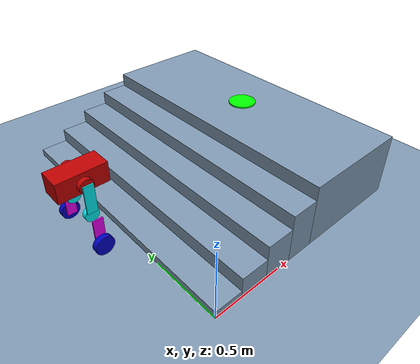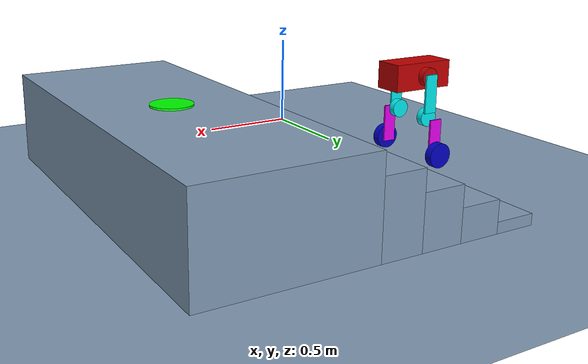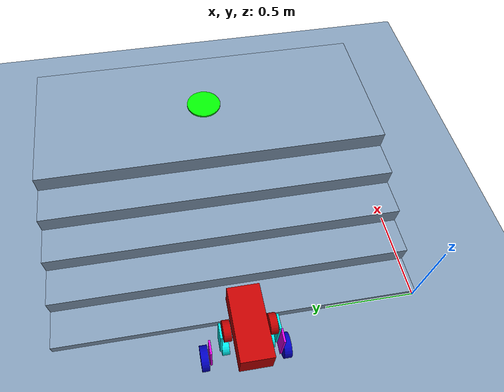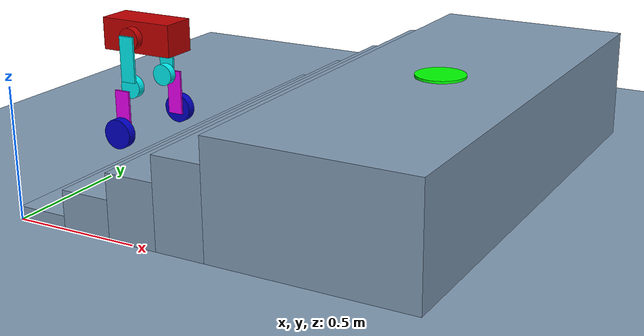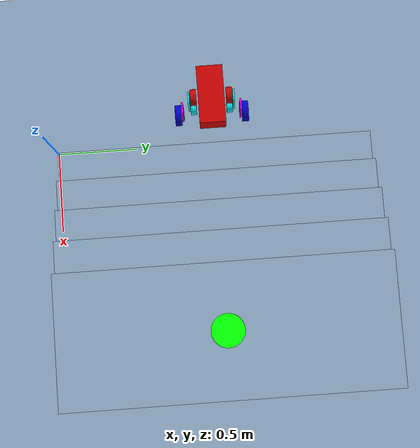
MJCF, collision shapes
<mujoco model="arx7">
  <compiler angle="radian" meshdir="./meshes/"/>
  <option timestep="0.002" integrator="RK4" gravity="0 0 -9.806" solver="Newton" noslip_iterations="0"/>
  <size njmax="10000" nconmax="10000"/>
  <default>
    <geom contype="1" conaffinity="1" friction="0.6 0.3 0.3" rgba="0.5 0.6 0.7 1" margin="0.001" group="0"/>
    <motor gear="50" ctrllimited="true" ctrlrange="-10 10" />
    <joint limited="true" frictionloss="0.5" damping="45" armature="0.1"/>
  </default>

  <asset>
    <mesh name="base_link" file="chassis/base_link.STL"/>
    <mesh name="left_thigh" file="chassis/left_thigh.STL"/>
    <mesh name="left_shin" file="chassis/left_shin.STL"/>
    <mesh name="left_wheel" file="chassis/left_wheel.STL"/>
    <mesh name="right_thigh" file="chassis/right_thigh.STL"/>
    <mesh name="right_shin" file="chassis/right_shin.STL"/>
    <mesh name="right_wheel" file="chassis/right_wheel.STL"/>

    <mesh name="stair1" file="stair/stair1.STL"/>
    <mesh name="stair2" file="stair/stair2.STL"/>
    <mesh name="stair3" file="stair/stair3.STL"/>
    <mesh name="stair4" file="stair/stair4.STL"/>
    <mesh name="stair5" file="stair/stair5.STL"/>
  </asset>

  <asset>
    <texture name="grid" type="2d" builtin="checker" rgb1=".9 .8 .7" rgb2=".4 .4 .4" width="300" height="300" mark="edge" markrgb=".2 .3 .4"/>
    <material name="grid" texture="grid" texrepeat="2 2" texuniform="true" reflectance=".2"/>
  </asset>

  <visual>
    <global offwidth="1920" offheight="1080"/>
    <rgba com="0.502 1.0 0 0.5" contactforce="0.98 0.4 0.4 0.7" contactpoint="1.0 1.0 0.6 0.4"/>
    <scale com="0.2" forcewidth="0.035" contactwidth="0.10" contactheight="0.04"/>
  </visual>

  <worldbody>
    <light directional="true" diffuse=".8 .8 .8" pos="0 0 10" dir="0 0 -10"/>
    <light pos="0.5 -.4 1." dir="1 2 -1.5" diffuse=".6 .6 .6"/>
    <camera name="top" pos="0. 0. 2." xyaxes="1.000 0.0 0.000 0.0 1.000 0.017"/>
    <camera name="left" pos="0. 1 0.3" xyaxes="-1. 0. 0. 0. 0. 1."/>
    <camera name="right" pos="0. -1 0.3" xyaxes="1. 0. 0. 0. 0. 1."/>
    <camera name="track" mode="trackcom" fovy="45" pos="0.5 -1. 0.35" xyaxes="0.866 0.5 0 0 0 1"/>
    <geom name="ground" type="plane" pos="0 0 0" size="20 20 0.1" material="grid" solimp=".9 .95 .001" solref='-10000 -1000'/>
    <geom name="stair1" type="mesh" mesh="stair1" pos="0.0 0 -0.05"/>
    <geom name="stair2" type="mesh" mesh="stair2" pos="0.2 0 -0.05"/>
    <geom name="stair3" type="mesh" mesh="stair3" pos="0.4 0 -0.05"/>
    <geom name="stair4" type="mesh" mesh="stair4" pos="0.6 0 -0.05"/>
    <geom name="stair5" type="mesh" mesh="stair5" pos="0.8 0 -0.05"/>
    <geom name="end" type="cylinder" size="0.1 0.01 0" pos="1.2 1 0.45" rgba="0 1 0 1" contype="0" conaffinity="0"/>
    <!-- ======= ROBOT ======= -->
    <body name="base_link" pos="-0.2 1 0.395" euler="0 0 0">
      <inertial pos="0.018885 0.00062964 0.06018" quat="-0.064773 0.618315 0.0968439 0.777246" mass="4.6733" diaginertia="0.054592 0.0348635 0.0323885"/>
      <joint name="floating_base" type="free" limited="false" frictionloss="1" damping="10" armature="0."/>
      <geom name="base1" type="mesh" contype="0" conaffinity="0" group="1" density="0" rgba="0.75294 0 0 1" mesh="base_link"/>
      <geom name="base2" size="0.17 0.077 0.07" pos="0.02 0 0.06" type="box" rgba="0.75294 0 0 0.000987654321"/>
      <geom name="base3" size="0.048 0.0175" pos="0.017241 0.106 0.0613" quat="0.499998 -0.500002 0.5 0.5" type="cylinder" rgba="0.75294 0 0 0.000987654321"/>
      <geom name="base4" size="0.048 0.0175" pos="0.017241 -0.106 0.0613" quat="0.499998 -0.500002 0.5 0.5" type="cylinder" rgba="0.75294 0 0 0.000987654321"/>
      <site name="imu" pos="0 0 0"/>
      <body name="left_thigh" pos="0.017241 0.13399 0.0613" quat="0.5 -0.500002 0.499998 0.5">
        <inertial pos="0.17494 0.0025294 0.012308" quat="0.0283574 0.728032 0.00169629 0.684954" mass="1.3343" diaginertia="0.00985328 0.00920167 0.00123438"/>
        <joint name="left_hip" pos="0 0 0" axis="0 0 1" range="-0.654 2.225"/>
        <geom name="left_thigh1" type="mesh" contype="0" conaffinity="0" group="1" density="0" rgba="0.89804 0.91765 0 1" mesh="left_thigh"/>
        <geom name="left_thigh2" size="0.1 0.035 0.005" pos="0.085 0 0" type="box" rgba="0 0.91765 0.92941 0.000987654321"/>
        <geom name="left_thigh3" size="0.048 0.0175" pos="0.21 0 -0.02375" type="cylinder" rgba="0 0.91765 0.92941 0.000987654321"/>
        <body name="left_shin" pos="0.21 0 0.0475">
          <inertial pos="0.15612 0.00046249 0.020119" quat="-0.0169558 0.755863 -0.00997261 0.654434" mass="0.94398" diaginertia="0.00396686 0.00358627 0.000682696"/>
          <joint name="left_knee" pos="0 0 0" axis="0 0 1" range="-2.243 0"/>
          <geom type="mesh" contype="0" conaffinity="0" group="1" density="0" rgba="0.89804 0.91765 0 1" mesh="left_shin"/>
          <geom size="0.1 0.035 0.005" pos="0.1 0 0" type="box" rgba="0.89804 0 0.92941 0.000987654321"/>
          <body name="left_wheel" pos="0.18 0 0.0305">
            <inertial pos="0 0 0.0012686" quat="0.5 0.5 -0.5 0.5" mass="0.44583" diaginertia="0.0014254 0.00076522 0.00076522"/>
            <joint name="left_ankle" pos="0 0 0" axis="0 0 1" limited="false"/>
            <geom type="mesh" contype="0" conaffinity="0" group="1" density="0" rgba="0.75294 0 0 1" mesh="left_wheel"/>
            <geom size="0.065 0.02" type="cylinder" rgba="0 0 0.75294 0.000987654321"/>
          </body>
        </body>
      </body>
      <body name="right_thigh" pos="0.017241 -0.13501 0.0613" quat="0.5 -0.500002 0.499998 0.5">
        <inertial pos="0.17494 0.0025279 -0.012308" quat="-0.00169159 0.684955 -0.0283402 0.728032" mass="1.3343" diaginertia="0.00985329 0.00920166 0.00123441"/>
        <joint name="right_hip" pos="0 0 0" axis="0 0 1" range="-0.654 2.225"/>
        <geom name="right_thigh1" type="mesh" contype="0" conaffinity="0" group="1" density="0" rgba="0.89804 0.91765 0 1" mesh="right_thigh"/>
        <geom name="right_thigh2" size="0.1 0.035 0.005" pos="0.085 0 0" type="box" rgba="0 0.91765 0.92941 0.000987654321"/>
        <geom name="right_thigh3" size="0.048 0.0175" pos="0.21 0 0.02375" type="cylinder" rgba="0 0.91765 0.92941 0.000987654321"/>
        <body name="right_shin" pos="0.21 0 -0.0475">
          <inertial pos="0.15612 0.00046556 -0.020119" quat="0.00996675 0.654435 0.0169079 0.755863" mass="0.94398" diaginertia="0.00396686 0.00358627 0.000682701"/>
          <joint name="right_knee" pos="0 0 0" axis="0 0 1" range="-2.243 0"/>
          <geom type="mesh" contype="0" conaffinity="0" group="1" density="0" rgba="0.89804 0.91765 0 1" mesh="right_shin"/>
          <geom size="0.1 0.035 0.005" pos="0.1 0 0" type="box" rgba="0.89804 0 0.92941 0.000987654321"/>
          <body name="right_wheel" pos="0.18 0 -0.0305">
            <inertial pos="0 0 -0.0012686" quat="0.5 0.5 -0.5 0.5" mass="0.44583" diaginertia="0.0014254 0.00076522 0.00076522"/>
            <joint name="right_ankle" pos="0 0 0" axis="0 0 1" limited="false"/>
            <geom type="mesh" contype="0" conaffinity="0" group="1" density="0" rgba="0.75294 0 0 1" mesh="right_wheel"/>
            <geom size="0.065 0.02" type="cylinder" rgba="0 0 0.75294 0.000987654321"/>
          </body>
        </body>
      </body>
    </body>
  </worldbody>
  <actuator>
    <motor name="left_hip_motor" joint="left_hip" />
    <motor name="left_knee_motor" joint="left_knee"/>
    <motor name="left_ankle_motor" joint="left_ankle"/>
    <motor name="right_hip_motor" joint="right_hip"/>
    <motor name="right_knee_motor" joint="right_knee"/>
    <motor name="right_ankle_motor" joint="right_ankle"/>
  </actuator>

  <sensor>
    <!-- The sensor sequence cannot be changed -->
    <framequat name="Body_Quat" objtype="site" objname="imu" />
    <gyro name="Body_Gyro" site="imu" />
    <accelerometer name="Body_Acc" site="imu" />
  </sensor>

</mujoco>
